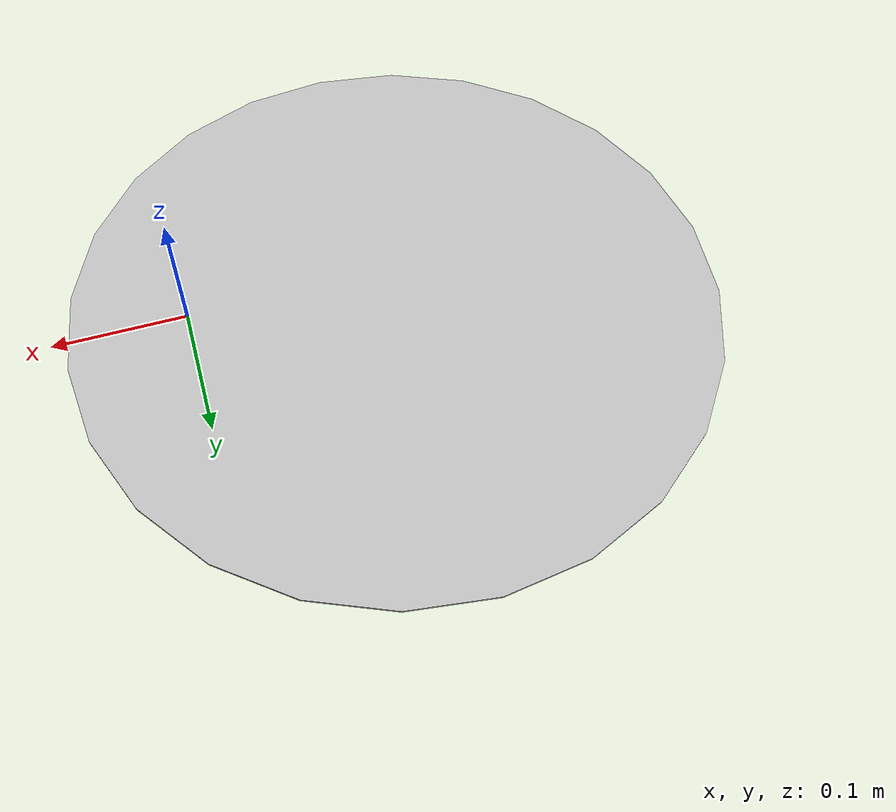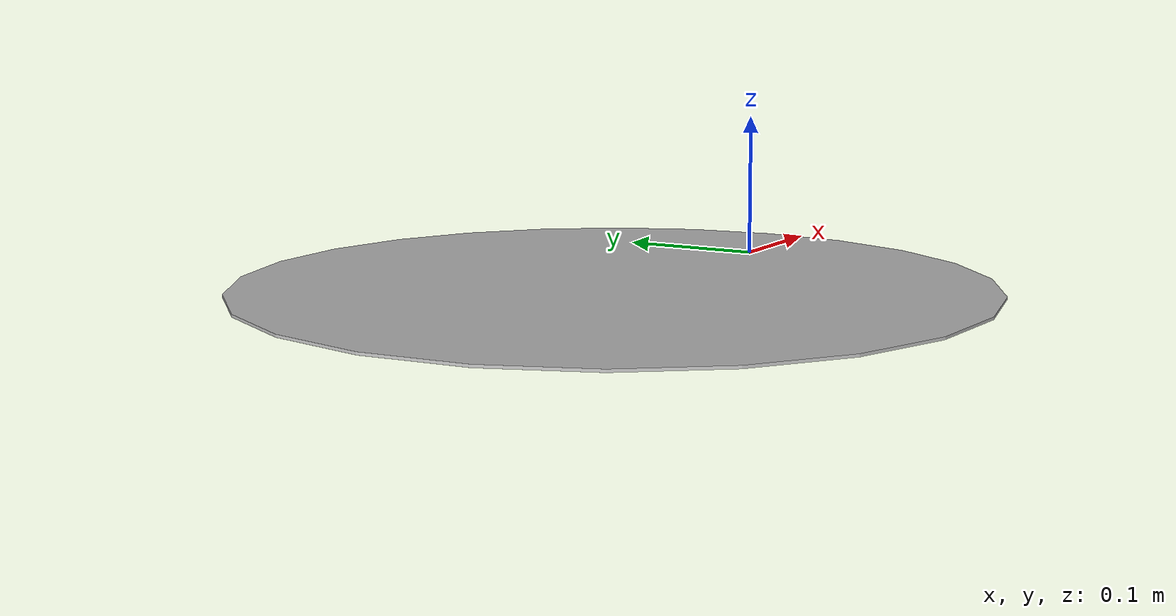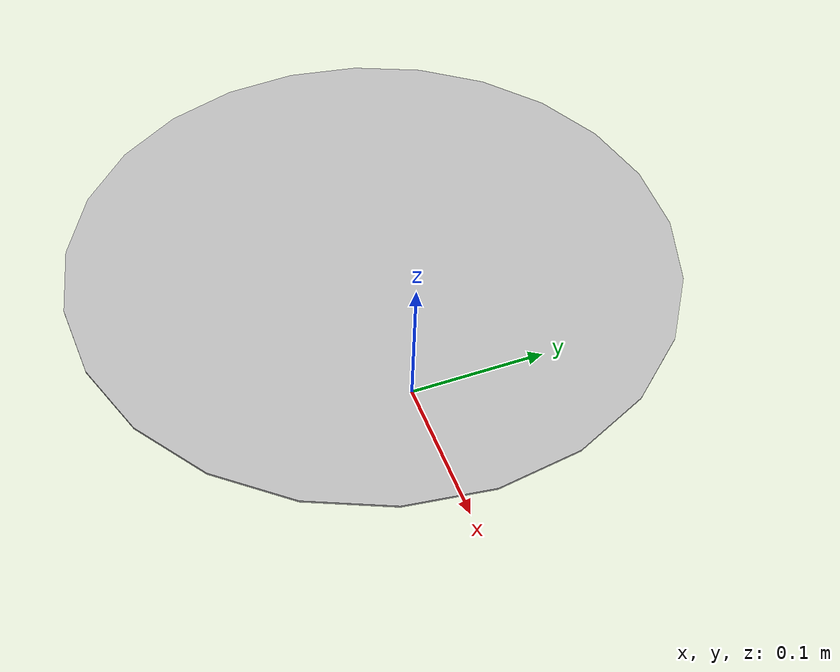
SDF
<?xml version='1.0'?>
<sdf version='1.6'>
  <model name='noForklift'>
    <link name='link_3'>
      <inertial>
        <mass>1</mass>
        <inertia>
          <ixx>0.166667</ixx>
          <ixy>0</ixy>
          <ixz>0</ixz>
          <iyy>0.166667</iyy>
          <iyz>0</iyz>
          <izz>0.166667</izz>
        </inertia>
        <pose frame=''>0 0 0 0 -0 0</pose>
      </inertial>
      <pose frame=''>0 0 0 0 -0 0</pose>
      <gravity>1</gravity>
      <self_collide>0</self_collide>
      <kinematic>0</kinematic>
      <enable_wind>0</enable_wind>
      <visual name='ModelPreview_6::link_3::visual_9'>
        <pose frame=''>-0.08 -0.31 0 0 -0 1</pose>
        <geometry>
	   <mesh>
             <uri>model://noForklift/model/model.dae</uri>
             <scale>0.266 0.266 0.266</scale>
           </mesh>
        </geometry>
        <material>
          <lighting>1</lighting>
        </material>
      </visual>
      <collision name='collision_9'>
        <laser_retro>0</laser_retro>
        <max_contacts>10</max_contacts>
        <pose frame=''>0 0 0 0 -0 0</pose>
        <geometry>
          <cylinder>
            <radius>0.25</radius>
            <length>0.001</length>
          </cylinder>
        </geometry>
        <surface>
          <friction>
            <ode>
              <mu>1</mu>
              <mu2>1</mu2>
              <fdir1>0 0 0</fdir1>
              <slip1>0</slip1>
              <slip2>0</slip2>
            </ode>
            <torsional>
              <coefficient>1</coefficient>
              <patch_radius>0</patch_radius>
              <surface_radius>0</surface_radius>
              <use_patch_radius>1</use_patch_radius>
              <ode>
                <slip>0</slip>
              </ode>
            </torsional>
          </friction>
          <bounce>
            <restitution_coefficient>0</restitution_coefficient>
            <threshold>1e+06</threshold>
          </bounce>
          <contact>
            <collide_without_contact>0</collide_without_contact>
            <collide_without_contact_bitmask>1</collide_without_contact_bitmask>
            <collide_bitmask>1</collide_bitmask>
            <ode>
              <soft_cfm>0</soft_cfm>
              <soft_erp>0.2</soft_erp>
              <kp>1e+13</kp>
              <kd>1</kd>
              <max_vel>0.01</max_vel>
              <min_depth>0</min_depth>
            </ode>
            <bullet>
              <split_impulse>1</split_impulse>
              <split_impulse_penetration_threshold>-0.01</split_impulse_penetration_threshold>
              <soft_cfm>0</soft_cfm>
              <soft_erp>0.2</soft_erp>
              <kp>1e+13</kp>
              <kd>1</kd>
            </bullet>
          </contact>
        </surface>
      </collision>
    </link>
    <static>1</static>
    <allow_auto_disable>1</allow_auto_disable>
  </model>
</sdf>
